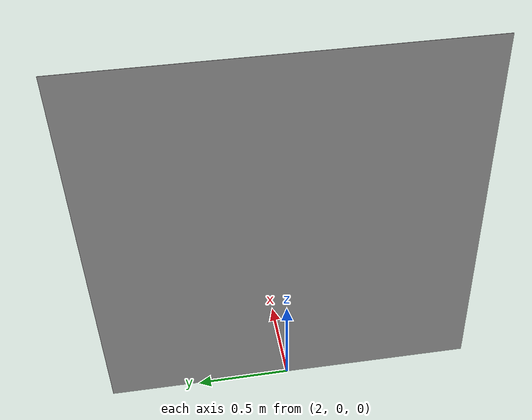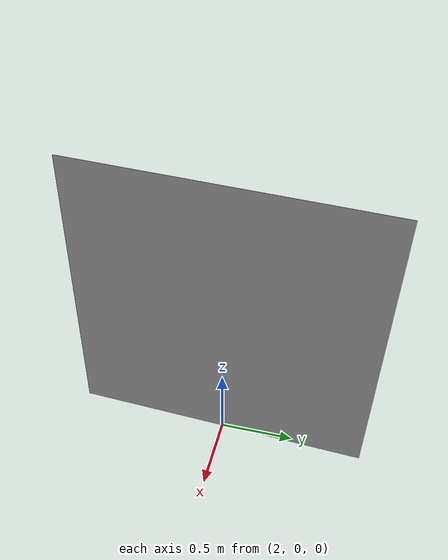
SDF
<?xml version="1.0" encoding="UTF-8"?>
<sdf version="1.4">
   <model name="qrcode">
      <static>true</static>
      <pose>2 0 1 1.6 1.55 4.712</pose>
      <link name="link">
         <visual name="visual">
            <cast_shadows>false</cast_shadows>
            <geometry>
               <plane>
                  <normal>0 0 1</normal>
                  <size>2 2</size>
               </plane>
            </geometry>
            <material>
               <script>
                  <uri>model://qrcode/materials/scripts</uri>
                  <uri>model://qrcode/materials/textures/</uri>
                  <name>qrcode/Image</name>
               </script>
            </material>
         </visual>
      </link>
   </model>
</sdf>
